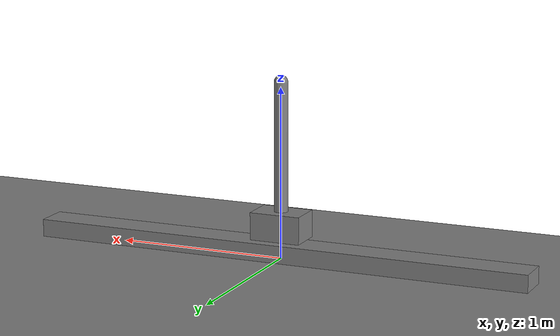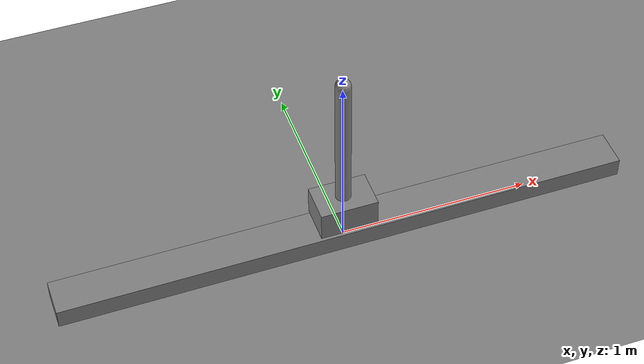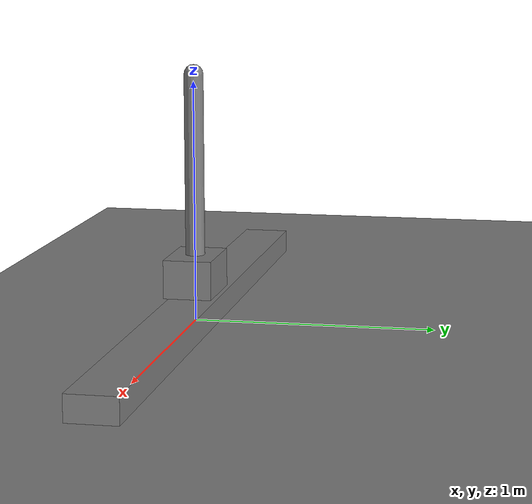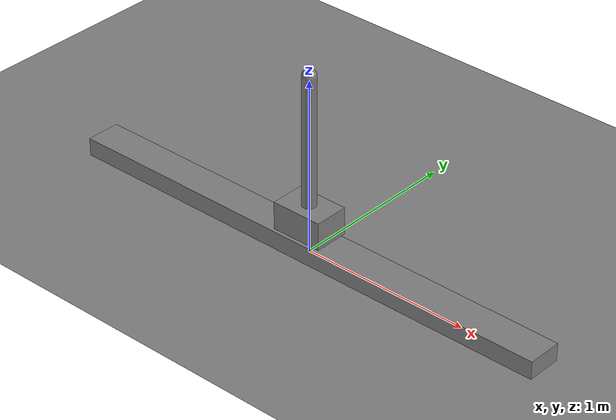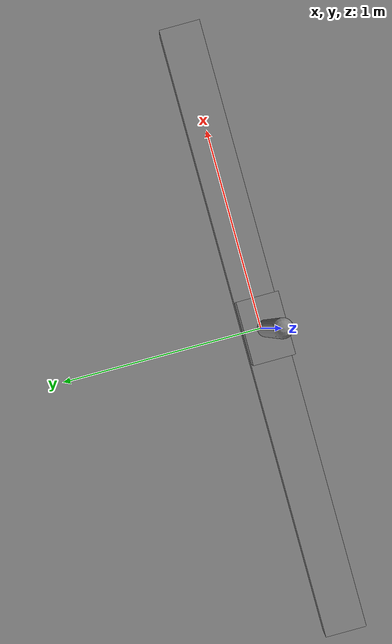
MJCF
<mujoco model="bsra_cartpole">
  <!-- MEMBER TODO 2.3: Set compiler angle units and simulation options.
       Disable geom collisions with a default shared by model and scenery. -->

  <compiler angle="degree"/>

    <option timestep="0.02"
            gravity="0 0 -9.81"
            integrator="RK4"/>

    <default>
      <geom contype="0"
          conaffinity="0"/>

    </default>

  <!-- MEMBER TODO 2.4: Include cartpole.xml here. -->

        <include file="cartpole.xml"/>

  <worldbody>
    <!-- MEMBER TODO 2.5: Add a floor, rail, light, and camera named side.
         Choose a view showing the full rail and upright pole. -->
    <geom name="floor-geom"
          type="plane"
          size="3 3 0.1"/>

    <geom name="rail-geom"
          type="box"
          size="1.5 0.1 0.1"/>

    <light mode="targetbody"
          target="cart"/>

    <camera name="side"
            mode="targetbody"
            target="cart"/>

  </worldbody>
</mujoco>

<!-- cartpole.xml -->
<mujocoinclude>
  <worldbody>
    <body name="cart"
          pos="0 0 0.20">
      <joint name="slider"
          type="slide"
          axis="1 0 0"
          range="-1.25 1.25"
          damping="1"/>
      <geom name="cart_geom"
            type="box"
            size="0.15 0.1 0.08"
            mass="10"/>

    <body name="pole"
          pos="0 0 0.08">
      <joint name="hinge"
          type="hinge"
          axis="0 1 0"
          range="-90 90"
          damping="1" />
      <geom name="pole_geom"
          type="capsule"
          size="0.04"
          fromto="0 0 0 0 0 0.75"
          mass="5"/>
      </body>

    </body>

  </worldbody>
  <actuator>
    <!-- MEMBER TODO 2.2: Add cart_motor on slider. Set the control limit
         and gear explicitly. The pole has no actuator. -->
    <motor name="cart_motor"
      ctrlrange="-3 3"
      joint="slider"
      gear="100"/>
  </actuator>
</mujocoinclude>
